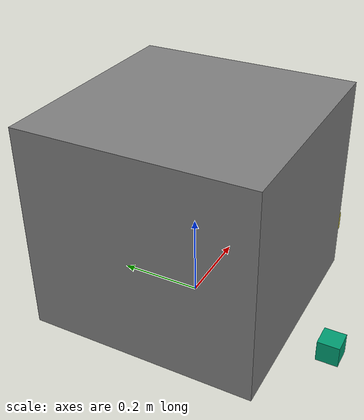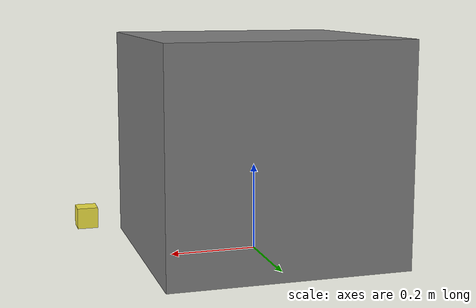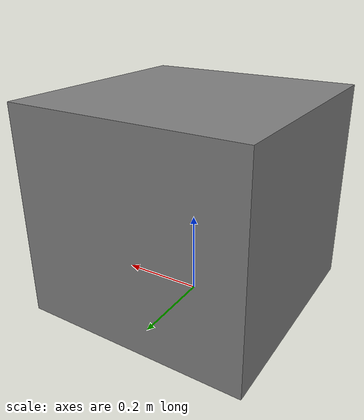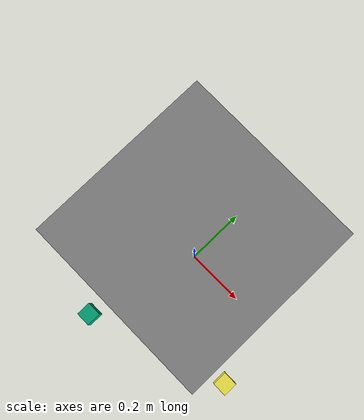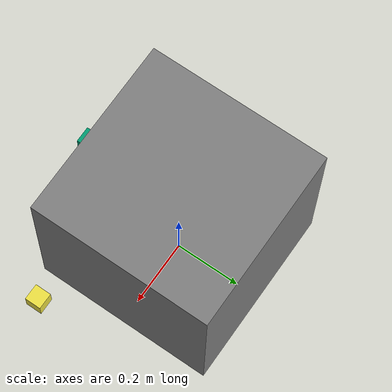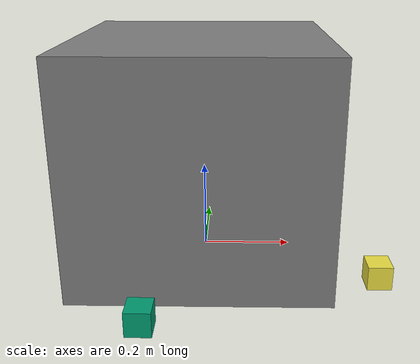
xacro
<?xml version="1.0"?>
<robot name="nhka_temp" xmlns:xacro="http://ros.org/wiki/xacro">
  <link name="base_footprint" />

  <link name="base_link">
    <visual>
      <origin xyz="0 0 0.2"/>
      <geometry>
        <box size="0.54341 0.54341 0.5"/>
      </geometry>
      <material name="gray">
        <color rgba="0.5 0.5 0.5 1.0"/>
      </material>
    </visual>
  </link>

  <link name="lidar0_link">
    <visual>
      <geometry>
        <box size="0.05 0.05 0.05"/>
      </geometry>
    </visual>
  </link>

  <link name="lidar1_link">
    <visual>
      <geometry>
        <box size="0.05 0.05 0.05"/>
      </geometry>
    </visual>
  </link>

  <joint name="base_joint" type="fixed">
    <origin xyz="0.0 0.0 0.05" rpy="0.0 0.0 0.0" />
    <parent link="base_footprint" />
    <child link="base_link" />
    <axis xyz="0.0 0.0 0.0" />
  </joint>

  <joint name="lidar0_joint" type="fixed">
    <origin xyz="-0.098 -0.3797 0.0" rpy="${radians(180)} 0.0 ${radians(90)}" />
    <parent link="base_link" />
    <child link="lidar0_link" />
    <axis xyz="0.0 0.0 0.0" />
  </joint>

  <joint name="lidar1_joint" type="fixed">
    <origin xyz="0.3645 -0.220 0.0" rpy="0.0 0.0 ${radians(0)}" />
    <parent link="base_link" />
    <child link="lidar1_link" />
    <axis xyz="0.0 0.0 0.0" />
  </joint>

</robot>
